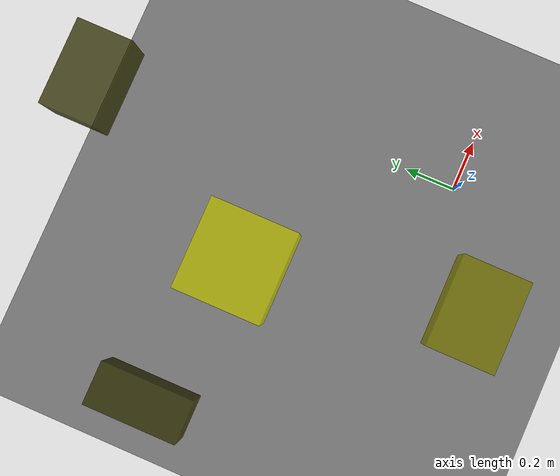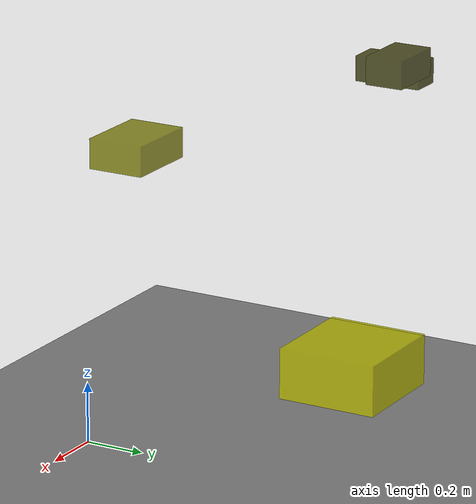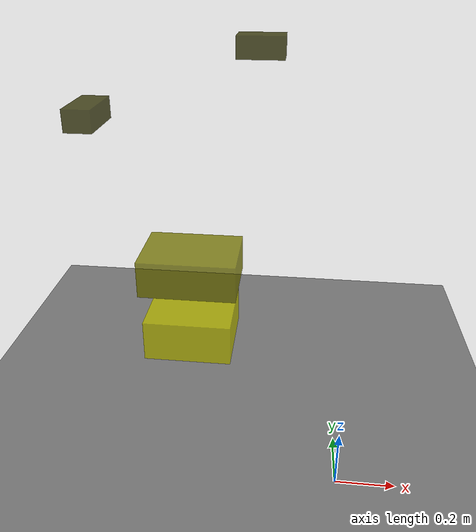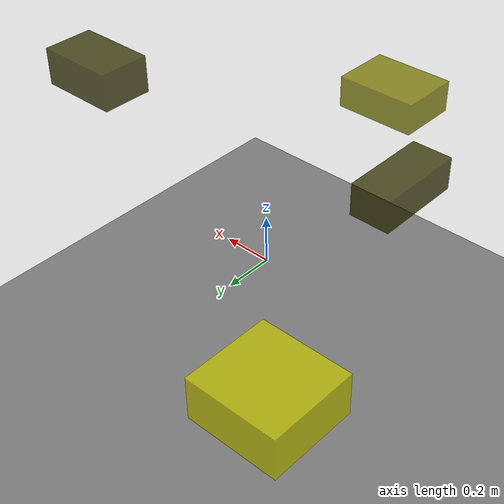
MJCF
<?xml version="1.0"?>
<mujoco model="obstacle_scene">
  <compiler angle="radian" coordinate="local"/>
  <option timestep="0.001" gravity="0 0 -9.81"/>

  <asset>
    <material name="obstacle_mat" rgba="0.8 0.8 0.0 0.8"/>
    <material name="ground_mat" rgba="0.5 0.5 0.5 1"/>
  </asset>

  <worldbody>
    <!-- Ground plane -->
    <geom name="ground" type="plane" size="3 3 0.1" material="ground_mat"/>

    <!-- Obstacles -->
    <body name="obstacle_0" pos="-0.953698 0.589885 1.088925">
      <geom name="obs_0" type="box" size="0.052862 0.114795 0.042285" rgba="0.2 0.2 0.0 0.8"/>
    </body>
    <body name="obstacle_1" pos="-0.453771 -0.089352 0.850501">
      <geom name="obs_1" type="box" size="0.130850 0.096738 0.050903" rgba="0.5 0.5 0.0 0.8"/>
    </body>
    <body name="obstacle_2" pos="-0.591334 0.638538 0.185825">
      <geom name="obs_2" type="box" size="0.177920 0.170198 0.085588" rgba="0.8 0.8 0.0 0.8"/>
    </body>
    <body name="obstacle_3" pos="-0.339801 0.921353 1.292087">
      <geom name="obs_3" type="box" size="0.095570 0.061241 0.044308" rgba="0.2 0.2 0.0 0.8"/>
    </body>
  </worldbody>
</mujoco>
